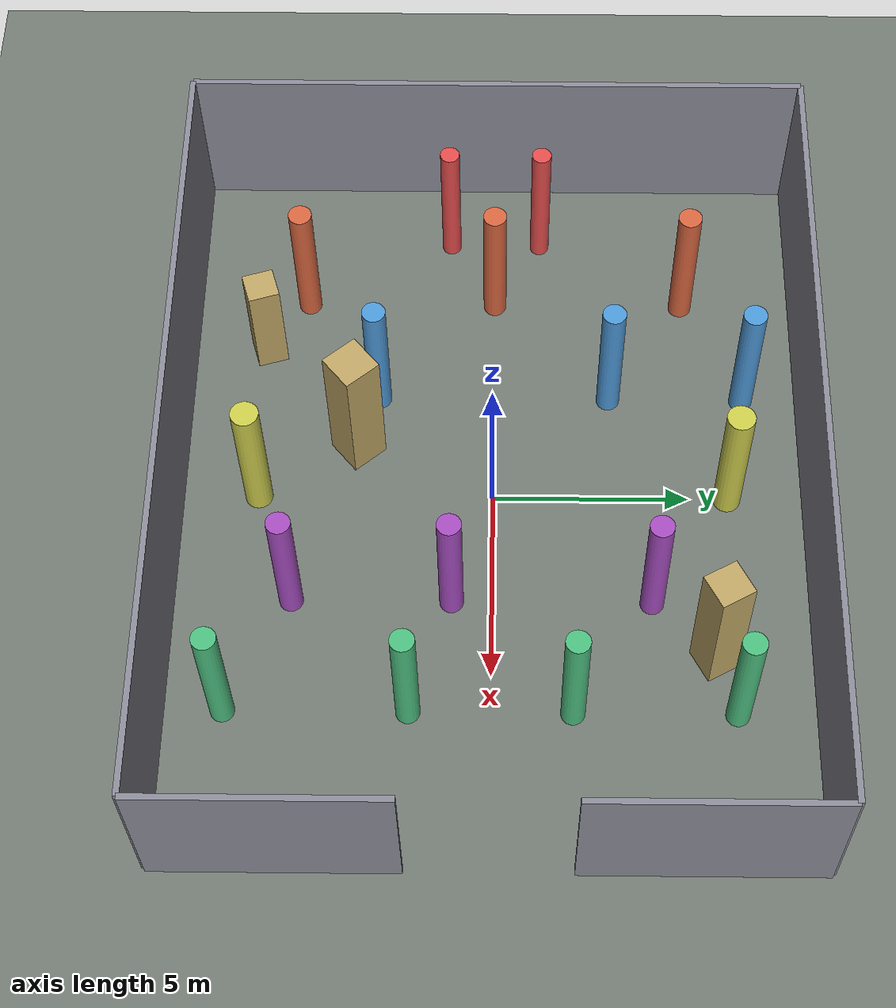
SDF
<sdf version='1.9'>
  <world name='obstacle_course'>
    <physics type="ode">
      <max_step_size>0.004</max_step_size>
      <real_time_factor>1.0</real_time_factor>
      <real_time_update_rate>250</real_time_update_rate>
    </physics>
    <gravity>0 0 -9.8</gravity>
    <magnetic_field>6e-06 2.3e-05 -4.2e-05</magnetic_field>
    <atmosphere type='adiabatic'/>
    <scene>
      <ambient>0.6 0.6 0.7 1</ambient>
      <grid>true</grid>
      <sky>
        <clouds>true</clouds>
      </sky>
      <shadows>1</shadows>
    </scene>

    <!-- Sunlight -->
    <light name='sunUTC' type='directional'>
      <pose>0 0 500 0 0 0</pose>
      <cast_shadows>true</cast_shadows>
      <intensity>1</intensity>
      <direction>0.001 0.625 -0.78</direction>
      <diffuse>0.904 0.904 0.904 1</diffuse>
      <specular>0.271 0.271 0.271 1</specular>
      <attenuation>
        <range>2000</range>
        <linear>0</linear>
        <constant>1</constant>
        <quadratic>0</quadratic>
      </attenuation>
    </light>

    <spherical_coordinates>
      <surface_model>EARTH_WGS84</surface_model>
      <world_frame_orientation>ENU</world_frame_orientation>
      <latitude_deg>37.412173071650805</latitude_deg>
      <longitude_deg>-121.998878727967</longitude_deg>
      <elevation>38</elevation>
    </spherical_coordinates>

    <!-- ── Ground plane ────────────────────────────────────── -->
    <model name="ground_plane">
      <static>true</static>
      <link name="link">
        <collision name="collision">
          <geometry>
            <plane><normal>0 0 1</normal><size>100 100</size></plane>
          </geometry>
        </collision>
        <visual name="visual">
          <geometry>
            <plane><normal>0 0 1</normal><size>100 100</size></plane>
          </geometry>
          <material>
            <ambient>0.35 0.38 0.35 1</ambient>
            <diffuse>0.45 0.48 0.45 1</diffuse>
          </material>
        </visual>
      </link>
    </model>

    <!-- ── Perimeter walls (20m x 16m rectangle) ───────────── -->
    <!-- Walls are 4.5m tall, 0.15m thick -->

    <!-- North wall (Y = +8) -->
    <model name="wall_north">
      <static>true</static>
      <pose>0 8 2.25 0 0 0</pose>
      <link name="link">
        <collision name="collision">
          <geometry><box><size>20 0.15 4.5</size></box></geometry>
        </collision>
        <visual name="visual">
          <geometry><box><size>20 0.15 4.5</size></box></geometry>
          <material>
            <ambient>0.4 0.4 0.45 1</ambient>
            <diffuse>0.55 0.55 0.6 1</diffuse>
          </material>
        </visual>
      </link>
    </model>

    <!-- South wall (Y = -8) -->
    <model name="wall_south">
      <static>true</static>
      <pose>0 -8 2.25 0 0 0</pose>
      <link name="link">
        <collision name="collision">
          <geometry><box><size>20 0.15 4.5</size></box></geometry>
        </collision>
        <visual name="visual">
          <geometry><box><size>20 0.15 4.5</size></box></geometry>
          <material>
            <ambient>0.4 0.4 0.45 1</ambient>
            <diffuse>0.55 0.55 0.6 1</diffuse>
          </material>
        </visual>
      </link>
    </model>

    <!-- West wall (X = -10) -->
    <model name="wall_west">
      <static>true</static>
      <pose>-10 0 2.25 0 0 0</pose>
      <link name="link">
        <collision name="collision">
          <geometry><box><size>0.15 16 4.5</size></box></geometry>
        </collision>
        <visual name="visual">
          <geometry><box><size>0.15 16 4.5</size></box></geometry>
          <material>
            <ambient>0.4 0.4 0.45 1</ambient>
            <diffuse>0.55 0.55 0.6 1</diffuse>
          </material>
        </visual>
      </link>
    </model>

    <!-- East wall (X = +10) with opening for entry/exit -->
    <model name="wall_east_top">
      <static>true</static>
      <pose>10 5 2.25 0 0 0</pose>
      <link name="link">
        <collision name="collision">
          <geometry><box><size>0.15 6 4.5</size></box></geometry>
        </collision>
        <visual name="visual">
          <geometry><box><size>0.15 6 4.5</size></box></geometry>
          <material>
            <ambient>0.4 0.4 0.45 1</ambient>
            <diffuse>0.55 0.55 0.6 1</diffuse>
          </material>
        </visual>
      </link>
    </model>
    <model name="wall_east_bottom">
      <static>true</static>
      <pose>10 -5 2.25 0 0 0</pose>
      <link name="link">
        <collision name="collision">
          <geometry><box><size>0.15 6 4.5</size></box></geometry>
        </collision>
        <visual name="visual">
          <geometry><box><size>0.15 6 4.5</size></box></geometry>
          <material>
            <ambient>0.4 0.4 0.45 1</ambient>
            <diffuse>0.55 0.55 0.6 1</diffuse>
          </material>
        </visual>
      </link>
    </model>

    <!-- ── Obstacle columns (4m tall cylinders) ────────────── -->
    <!-- Row 1: X = -6 -->
    <model name="col_r1_1">
      <static>true</static>
      <pose>-6 -5 2 0 0 0</pose>
      <link name="link">
        <collision name="col"><geometry><cylinder><radius>0.3</radius><length>4</length></cylinder></geometry></collision>
        <visual name="vis"><geometry><cylinder><radius>0.3</radius><length>4</length></cylinder></geometry>
          <material><ambient>0.7 0.3 0.2 1</ambient><diffuse>0.85 0.4 0.25 1</diffuse></material>
        </visual>
      </link>
    </model>
    <model name="col_r1_2">
      <static>true</static>
      <pose>-6 0 2 0 0 0</pose>
      <link name="link">
        <collision name="col"><geometry><cylinder><radius>0.3</radius><length>4</length></cylinder></geometry></collision>
        <visual name="vis"><geometry><cylinder><radius>0.3</radius><length>4</length></cylinder></geometry>
          <material><ambient>0.7 0.3 0.2 1</ambient><diffuse>0.85 0.4 0.25 1</diffuse></material>
        </visual>
      </link>
    </model>
    <model name="col_r1_3">
      <static>true</static>
      <pose>-6 5 2 0 0 0</pose>
      <link name="link">
        <collision name="col"><geometry><cylinder><radius>0.3</radius><length>4</length></cylinder></geometry></collision>
        <visual name="vis"><geometry><cylinder><radius>0.3</radius><length>4</length></cylinder></geometry>
          <material><ambient>0.7 0.3 0.2 1</ambient><diffuse>0.85 0.4 0.25 1</diffuse></material>
        </visual>
      </link>
    </model>

    <!-- Row 2: X = -3 (offset for staggered pattern) -->
    <model name="col_r2_1">
      <static>true</static>
      <pose>-3 -3 2 0 0 0</pose>
      <link name="link">
        <collision name="col"><geometry><cylinder><radius>0.3</radius><length>4</length></cylinder></geometry></collision>
        <visual name="vis"><geometry><cylinder><radius>0.3</radius><length>4</length></cylinder></geometry>
          <material><ambient>0.2 0.5 0.7 1</ambient><diffuse>0.3 0.6 0.85 1</diffuse></material>
        </visual>
      </link>
    </model>
    <model name="col_r2_2">
      <static>true</static>
      <pose>-3 3 2 0 0 0</pose>
      <link name="link">
        <collision name="col"><geometry><cylinder><radius>0.3</radius><length>4</length></cylinder></geometry></collision>
        <visual name="vis"><geometry><cylinder><radius>0.3</radius><length>4</length></cylinder></geometry>
          <material><ambient>0.2 0.5 0.7 1</ambient><diffuse>0.3 0.6 0.85 1</diffuse></material>
        </visual>
      </link>
    </model>
    <model name="col_r2_3">
      <static>true</static>
      <pose>-3 6.5 2 0 0 0</pose>
      <link name="link">
        <collision name="col"><geometry><cylinder><radius>0.3</radius><length>4</length></cylinder></geometry></collision>
        <visual name="vis"><geometry><cylinder><radius>0.3</radius><length>4</length></cylinder></geometry>
          <material><ambient>0.2 0.5 0.7 1</ambient><diffuse>0.3 0.6 0.85 1</diffuse></material>
        </visual>
      </link>
    </model>

    <!-- Row 3: X = 0 (center, around drone spawn) -->
    <model name="col_r3_1">
      <static>true</static>
      <pose>0 -6 2 0 0 0</pose>
      <link name="link">
        <collision name="col"><geometry><cylinder><radius>0.35</radius><length>4</length></cylinder></geometry></collision>
        <visual name="vis"><geometry><cylinder><radius>0.35</radius><length>4</length></cylinder></geometry>
          <material><ambient>0.6 0.6 0.2 1</ambient><diffuse>0.8 0.8 0.3 1</diffuse></material>
        </visual>
      </link>
    </model>
    <model name="col_r3_2">
      <static>true</static>
      <pose>0 6 2 0 0 0</pose>
      <link name="link">
        <collision name="col"><geometry><cylinder><radius>0.35</radius><length>4</length></cylinder></geometry></collision>
        <visual name="vis"><geometry><cylinder><radius>0.35</radius><length>4</length></cylinder></geometry>
          <material><ambient>0.6 0.6 0.2 1</ambient><diffuse>0.8 0.8 0.3 1</diffuse></material>
        </visual>
      </link>
    </model>

    <!-- Row 4: X = 3 (offset) -->
    <model name="col_r4_1">
      <static>true</static>
      <pose>3 -5 2 0 0 0</pose>
      <link name="link">
        <collision name="col"><geometry><cylinder><radius>0.3</radius><length>4</length></cylinder></geometry></collision>
        <visual name="vis"><geometry><cylinder><radius>0.3</radius><length>4</length></cylinder></geometry>
          <material><ambient>0.5 0.2 0.6 1</ambient><diffuse>0.65 0.3 0.75 1</diffuse></material>
        </visual>
      </link>
    </model>
    <model name="col_r4_2">
      <static>true</static>
      <pose>3 -1 2 0 0 0</pose>
      <link name="link">
        <collision name="col"><geometry><cylinder><radius>0.3</radius><length>4</length></cylinder></geometry></collision>
        <visual name="vis"><geometry><cylinder><radius>0.3</radius><length>4</length></cylinder></geometry>
          <material><ambient>0.5 0.2 0.6 1</ambient><diffuse>0.65 0.3 0.75 1</diffuse></material>
        </visual>
      </link>
    </model>
    <model name="col_r4_3">
      <static>true</static>
      <pose>3 4 2 0 0 0</pose>
      <link name="link">
        <collision name="col"><geometry><cylinder><radius>0.3</radius><length>4</length></cylinder></geometry></collision>
        <visual name="vis"><geometry><cylinder><radius>0.3</radius><length>4</length></cylinder></geometry>
          <material><ambient>0.5 0.2 0.6 1</ambient><diffuse>0.65 0.3 0.75 1</diffuse></material>
        </visual>
      </link>
    </model>

    <!-- Row 5: X = 6 -->
    <model name="col_r5_1">
      <static>true</static>
      <pose>6 -6.5 2 0 0 0</pose>
      <link name="link">
        <collision name="col"><geometry><cylinder><radius>0.3</radius><length>4</length></cylinder></geometry></collision>
        <visual name="vis"><geometry><cylinder><radius>0.3</radius><length>4</length></cylinder></geometry>
          <material><ambient>0.2 0.6 0.4 1</ambient><diffuse>0.3 0.75 0.5 1</diffuse></material>
        </visual>
      </link>
    </model>
    <model name="col_r5_2">
      <static>true</static>
      <pose>6 -2 2 0 0 0</pose>
      <link name="link">
        <collision name="col"><geometry><cylinder><radius>0.3</radius><length>4</length></cylinder></geometry></collision>
        <visual name="vis"><geometry><cylinder><radius>0.3</radius><length>4</length></cylinder></geometry>
          <material><ambient>0.2 0.6 0.4 1</ambient><diffuse>0.3 0.75 0.5 1</diffuse></material>
        </visual>
      </link>
    </model>
    <model name="col_r5_3">
      <static>true</static>
      <pose>6 2 2 0 0 0</pose>
      <link name="link">
        <collision name="col"><geometry><cylinder><radius>0.3</radius><length>4</length></cylinder></geometry></collision>
        <visual name="vis"><geometry><cylinder><radius>0.3</radius><length>4</length></cylinder></geometry>
          <material><ambient>0.2 0.6 0.4 1</ambient><diffuse>0.3 0.75 0.5 1</diffuse></material>
        </visual>
      </link>
    </model>
    <model name="col_r5_4">
      <static>true</static>
      <pose>6 6 2 0 0 0</pose>
      <link name="link">
        <collision name="col"><geometry><cylinder><radius>0.3</radius><length>4</length></cylinder></geometry></collision>
        <visual name="vis"><geometry><cylinder><radius>0.3</radius><length>4</length></cylinder></geometry>
          <material><ambient>0.2 0.6 0.4 1</ambient><diffuse>0.3 0.75 0.5 1</diffuse></material>
        </visual>
      </link>
    </model>

    <!-- ── Square box obstacles (variety) ──────────────────── -->
    <model name="box_1">
      <static>true</static>
      <pose>-4.5 -6 1.5 0 0 0.3</pose>
      <link name="link">
        <collision name="col"><geometry><box><size>0.8 0.8 3</size></box></geometry></collision>
        <visual name="vis"><geometry><box><size>0.8 0.8 3</size></box></geometry>
          <material><ambient>0.6 0.5 0.3 1</ambient><diffuse>0.75 0.65 0.4 1</diffuse></material>
        </visual>
      </link>
    </model>
    <model name="box_2">
      <static>true</static>
      <pose>-1.5 -3.5 2 0 0 0.7</pose>
      <link name="link">
        <collision name="col"><geometry><box><size>1 1 4</size></box></geometry></collision>
        <visual name="vis"><geometry><box><size>1 1 4</size></box></geometry>
          <material><ambient>0.6 0.5 0.3 1</ambient><diffuse>0.75 0.65 0.4 1</diffuse></material>
        </visual>
      </link>
    </model>
    <model name="box_3">
      <static>true</static>
      <pose>4.5 5.5 2 0 0 0.5</pose>
      <link name="link">
        <collision name="col"><geometry><box><size>0.9 0.9 4</size></box></geometry></collision>
        <visual name="vis"><geometry><box><size>0.9 0.9 4</size></box></geometry>
          <material><ambient>0.6 0.5 0.3 1</ambient><diffuse>0.75 0.65 0.4 1</diffuse></material>
        </visual>
      </link>
    </model>

    <!-- ── Narrow passage (two close columns) ──────────────── -->
    <model name="passage_left">
      <static>true</static>
      <pose>-8 1.2 2 0 0 0</pose>
      <link name="link">
        <collision name="col"><geometry><cylinder><radius>0.25</radius><length>4</length></cylinder></geometry></collision>
        <visual name="vis"><geometry><cylinder><radius>0.25</radius><length>4</length></cylinder></geometry>
          <material><ambient>0.7 0.2 0.2 1</ambient><diffuse>0.9 0.3 0.3 1</diffuse></material>
        </visual>
      </link>
    </model>
    <model name="passage_right">
      <static>true</static>
      <pose>-8 -1.2 2 0 0 0</pose>
      <link name="link">
        <collision name="col"><geometry><cylinder><radius>0.25</radius><length>4</length></cylinder></geometry></collision>
        <visual name="vis"><geometry><cylinder><radius>0.25</radius><length>4</length></cylinder></geometry>
          <material><ambient>0.7 0.2 0.2 1</ambient><diffuse>0.9 0.3 0.3 1</diffuse></material>
        </visual>
      </link>
    </model>

  </world>
</sdf>
